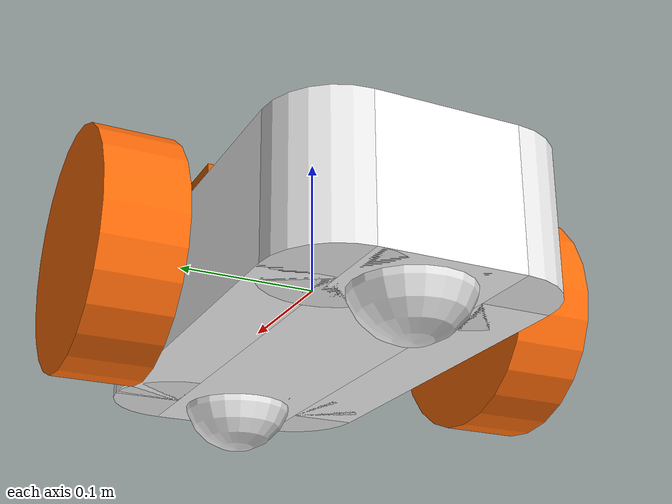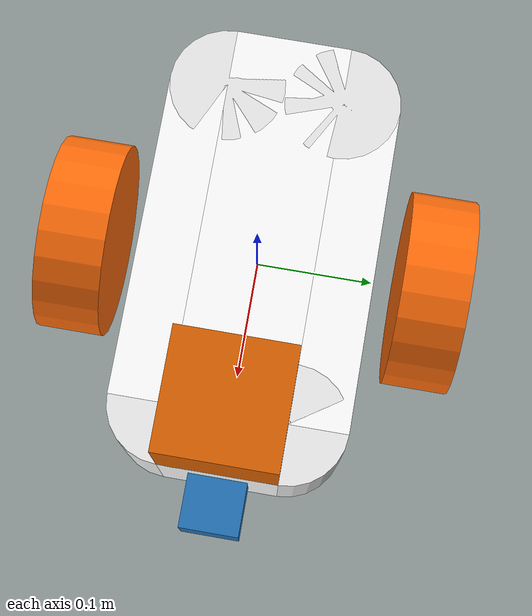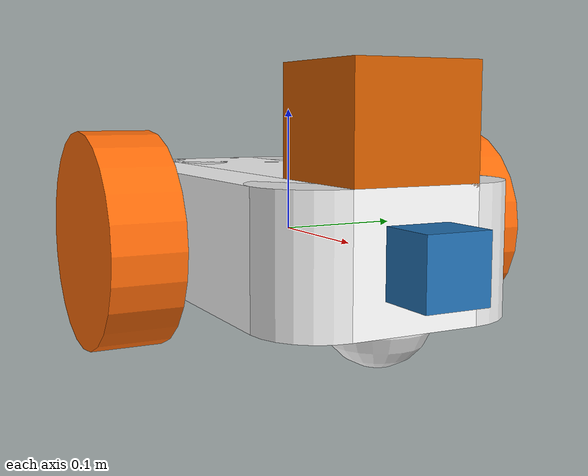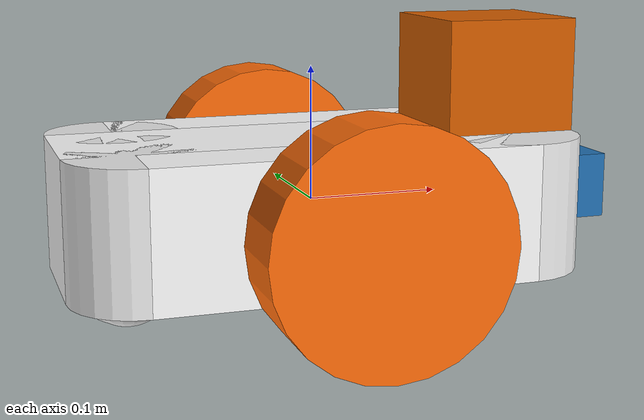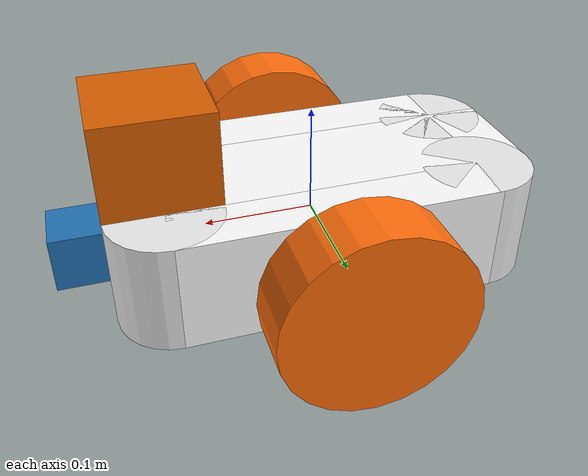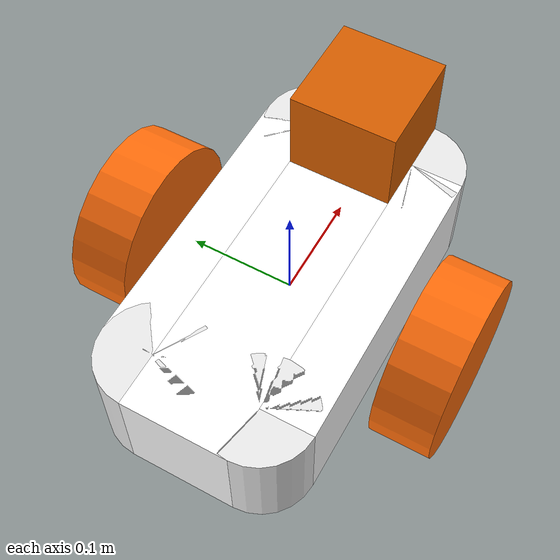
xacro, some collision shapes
<?xml version='1.0'?>

<robot name="rover" xmlns:xacro="http://www.ros.org/wiki/xacro">

  <xacro:include filename="$(find rover)/urdf/rover.gazebo" />

  <material name="skyblue">
    <color rgba="0.13 0.44 0.70 1.0"/>
  </material>

  <material name="white">
    <color rgba="1.0 1.0 1.0 1.0"/>
  </material>

  <material name="orange">
    <color rgba="${255/255} ${108/255} ${10/255} 1.0"/>
  </material>

  <link name="robot_footprint"></link>

  <joint name="robot_footprint_joint" type="fixed">
    <origin xyz="0 0 0" rpy="0 0 0" />
    <parent link="robot_footprint"/>
    <child link="chassis" />
  </joint>

  <link name='chassis'>
    <pose>0 0 0.1 0 0 0</pose>

    <inertial>
      <mass value="15.0"/>
      <origin xyz="0.0 0 0" rpy=" 0 0 0"/>
      <inertia
          ixx="0.1" ixy="0" ixz="0"
          iyy="0.1" iyz="0"
          izz="0.1"
      />
    </inertial>

    <collision name='base_collision'>
      <origin xyz="0 0 0" rpy=" 0 0 0"/>
      <geometry>
        <box size="0.38 0.1 0.1"/>
      </geometry>
    </collision>

    <visual name='base_visual'>
      <origin xyz="0 0 0" rpy=" 0 0 0"/>
      <geometry>
        <box size="0.38 0.1 0.1"/>
      </geometry>
      <material name="white"/>
    </visual>

    <collision name='left_wing_collision'>
      <origin xyz="0 0.075 0" rpy=" 0 0 0"/>
      <geometry>
        <box size="0.28 0.05 0.1"/>
      </geometry>
    </collision>

    <visual name='left_wing_visual'>
      <origin xyz="0 0.075 0" rpy=" 0 0 0"/>
      <geometry>
        <box size="0.28 0.05 0.1"/>
      </geometry>
      <material name="white"/>
    </visual>

    <collision name='right_wing_collision'>
      <origin xyz="0 -0.075 0" rpy=" 0 0 0"/>
      <geometry>
        <box size="0.28 0.05 0.1"/>
      </geometry>
    </collision>

    <visual name='right_wing_visual'>
      <origin xyz="0 -0.075 0" rpy=" 0 0 0"/>
      <geometry>
        <box size="0.28 0.05 0.1"/>
      </geometry>
      <material name="white"/>
    </visual>

    <collision name='front_left_fender_collision'>
      <origin xyz="0.14 0.05 0" rpy="0 0 1.5707"/>
      <geometry>
        <cylinder length="0.1" radius="0.05"/>
      </geometry>
    </collision>

    <visual name='front_left_fender_visual'>
      <origin xyz="0.14 0.05 0" rpy="0 0 1.5707"/>
      <geometry>
        <cylinder length="0.1" radius="0.05"/>
      </geometry>
    </visual>

    <collision name='front_right_fender_collision'>
      <origin xyz="0.14 -0.05 0" rpy="0 0 1.5707"/>
      <geometry>
        <cylinder length="0.1" radius="0.05"/>
      </geometry>
    </collision>

    <visual name='front_right_fender_visual'>
      <origin xyz="0.14 -0.05 0" rpy="0 0 1.5707"/>
      <geometry>
        <cylinder length="0.1" radius="0.05"/>
      </geometry>
    </visual>

    <collision name='rear_right_fender_collision'>
      <origin xyz="-0.14 -0.05 0" rpy="0 0 1.5707"/>
      <geometry>
        <cylinder length="0.1" radius="0.05"/>
      </geometry>
    </collision>

    <visual name='rear_right_fender_visual'>
      <origin xyz="-0.14 -0.05 0" rpy="0 0 1.5707"/>
      <geometry>
        <cylinder length="0.1" radius="0.05"/>
      </geometry>
    </visual>

    <collision name='rear_left_fender_collision'>
      <origin xyz="-0.14 0.05 0" rpy="0 0 1.5707"/>
      <geometry>
        <cylinder length="0.1" radius="0.05"/>
      </geometry>
    </collision>

    <visual name='rear_left_fender_visual'>
      <origin xyz="-0.14 0.05 0" rpy="0 0 1.5707"/>
      <geometry>
        <cylinder length="0.1" radius="0.05"/>
      </geometry>
    </visual>

    <collision name='front_caster_collision'>
      <origin xyz="0.14 0 -0.042" rpy=" 0 0 0"/>
      <geometry>
        <sphere radius="0.042"/>
      </geometry>
      <surface>
        <friction>
          <ode>
            <mu>0</mu>
            <mu2>0</mu2>
            <slip1>1.0</slip1>
            <slip2>1.0</slip2>
          </ode>
        </friction>
      </surface>
    </collision>

    <visual name='front_caster_visual'>
      <origin xyz="0.14 0 -0.042" rpy=" 0 0 0"/>
      <geometry>
        <sphere radius="0.042"/>
      </geometry>
    </visual>

    <collision name='back_caster_collision'>
      <origin xyz="-0.14 0 -0.042" rpy=" 0 0 0"/>
      <geometry>
        <sphere radius="0.042"/>
      </geometry>
      <surface>
        <friction>
          <ode>
            <mu>0</mu>
            <mu2>0</mu2>
            <slip1>1.0</slip1>
            <slip2>1.0</slip2>
          </ode>
        </friction>
      </surface>
    </collision>

    <visual name='back_caster_visual'>
      <origin xyz="-0.14 0 -0.042" rpy=" 0 0 0"/>
      <geometry>
        <sphere radius="0.042"/>
      </geometry>
    </visual>
  </link>

  <!-- front wheels -->
  <link name='front_left_wheel'>
    <pose>0 0 0.1 0 0 0</pose>

    <inertial>
      <mass value="5.0"/>
      <origin xyz="0 0 0" rpy=" 0 1.5707 1.5707"/>
      <inertia
          ixx="0.1" ixy="0" ixz="0"
          iyy="0.1" iyz="0"
          izz="0.1"
      />
    </inertial>

    <collision name='front_left_wheel_collision'>
      <origin xyz="0 0 0" rpy=" 0 1.5707 1.5707"/>
      <geometry>
        <cylinder length="0.056" radius="0.084"/>
      </geometry>
    </collision>

    <visual name='front_left_wheel_visual'>
      <origin xyz="0 0 0" rpy=" 0 1.5707 1.5707"/>
      <material name="orange"/>
      <geometry>
        <cylinder length="0.056" radius="0.084"/>
      </geometry>
    </visual>
  </link>

  <joint type="continuous" name="front_left_wheel_hinge">
    <origin xyz="0 0.15 0" rpy="0 0 0"/>
    <child link="front_left_wheel"/>
    <parent link="chassis"/>
    <axis xyz="0 1 0" rpy="0 0 0"/>
    <limit effort="10000" velocity="1000"/>
    <joint_properties damping="1.0" friction="1.0"/>
  </joint>

  <link name='front_right_wheel'>
    <pose>0 0 0.1 0 0 0</pose>

    <inertial>
      <mass value="5.0"/>
      <origin xyz="0 0 0" rpy=" 0 1.5707 1.5707"/>
      <inertia
          ixx="0.1" ixy="0" ixz="0"
          iyy="0.1" iyz="0"
          izz="0.1"
      />
    </inertial>

    <collision name='front_right_wheel_collision'>
      <origin xyz="0 0 0" rpy=" 0 1.5707 1.5707"/>
      <geometry>
        <cylinder length="0.056" radius="0.084"/>
      </geometry>
    </collision>

    <visual name='front_right_wheel_visual'>
      <origin xyz="0 0 0" rpy=" 0 1.5707 1.5707"/>
      <material name="orange"/>
      <geometry>
        <cylinder length="0.056" radius="0.084"/>
      </geometry>
    </visual>
  </link>

  <joint type="continuous" name="front_right_wheel_hinge">
    <origin xyz="0 -0.15 0" rpy="0 0 0"/>
    <child link="front_right_wheel"/>
    <parent link="chassis"/>
    <axis xyz="0 1 0" rpy="0 0 0"/>
    <limit effort="10000" velocity="1000"/>
    <joint_properties damping="1.0" friction="1.0"/>
  </joint>

  <!-- camera -->
  <link name='camera'>
    <pose>0 0 0.1 0 0 0</pose>

    <inertial>
      <mass value="0.1"/>
      <origin xyz="0 0 0" rpy=" 0 0 0"/>
      <inertia
          ixx="1e-6" ixy="0" ixz="0"
          iyy="1e-6" iyz="0"
          izz="1e-6"
      />
    </inertial>

    <collision name='camera_collision'>
      <origin xyz="0 0 0" rpy=" 0 0 0"/>
      <geometry>
        <box size=".05 .05 .05"/>
      </geometry>
    </collision>

    <visual name='camera_visual'>
      <origin xyz="0 0 0" rpy=" 0 0 0"/>
      <material name="skyblue"/>
      <geometry>
        <box size=".05 .05 .05"/>
      </geometry>
    </visual>
  </link>

  <joint type="fixed" name="camera_joint">
    <origin xyz="0.21 0 0" rpy="0 0 0"/>
    <child link="camera"/>
    <parent link="chassis"/>
    <axis xyz="0 1 0" rpy="0 0 0"/>
    <limit effort="10000" velocity="1000"/>
    <joint_properties damping="1.0" friction="1.0"/>
  </joint>

  <!-- laser range finder -->
  <link name='hokuyo'>
    <pose>0 0 0.1 0 0 0</pose>

    <inertial>
      <mass value="0.1"/>
      <origin xyz="0 0 0" rpy=" 0 0 0"/>
      <inertia
          ixx="1e-6" ixy="0" ixz="0"
          iyy="1e-6" iyz="0"
          izz="1e-6"
      />
    </inertial>

    <collision name='hokuyo_collision'>
      <origin xyz="0 0 0" rpy=" 0 0 0"/>
      <geometry>
        <box size=".1 .1 .1"/>
      </geometry>
    </collision>

    <visual name='hokuyo_visual'>
      <origin xyz="0 0 0" rpy=" 0 0 0"/>
      <geometry>
        <mesh filename="package://rover/meshes/hokuyo.dae"/>
      </geometry>
    </visual>
  </link>

  <joint type="fixed" name="hokuyo_joint">
    <origin xyz="0.14 0.0 0.084" rpy="0 0 0"/>
    <child link="hokuyo"/>
    <parent link="chassis"/>
    <axis xyz="0 1 0" rpy="0 0 0"/>
    <limit effort="10000" velocity="1000"/>
    <joint_properties damping="1.0" friction="1.0"/>
  </joint>
</robot>
